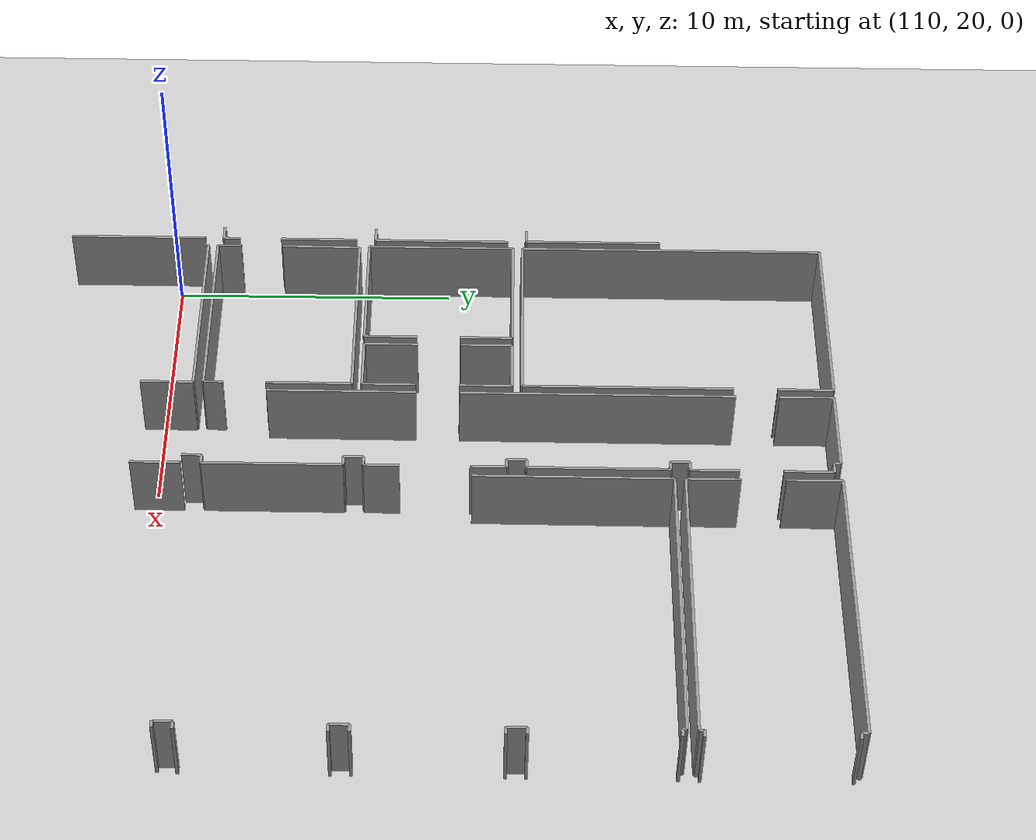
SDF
<sdf version="1.6">
 <world name="default">
  <model name="ground_plane">
   <static>1</static>
   <link name="link">
    <collision name="collision">
     <geometry><plane><normal>0 0 1</normal><size>100 100</size></plane></geometry>
     <surface><friction><ode><mu>100</mu><mu2>50</mu2></ode></friction></surface>
    </collision>
    <visual name="visual">
     <cast_shadows>0</cast_shadows>
     <geometry><plane><normal>0 0 1</normal><size>100 100</size></plane></geometry>
     <material>
      <script><uri>file://media/materials/scripts/gazebo.material</uri><name>Gazebo/Grey</name></script>
     </material>
    </visual>
   </link>
  </model>
  <model name="50015847">
   <static>1</static>
   <link name="Wall_699">
    <collision name="Wall_699_Collision">
     <geometry><box><size>4.9366959882 0.1 2.5</size></box></geometry>
     <pose>2.4683479941 0 1.25 0 0 0</pose>
    </collision>
    <visual name="Wall_699_Visual">
     <pose>2.4683479941 0 1.25 0 0 0</pose>
     <geometry><box><size>4.9366959882 0.1 2.5</size></box></geometry>
     <material>
      <script><uri>file://media/materials/scripts/gazebo.material</uri><name>Gazebo/Grey</name></script>
      <ambient>1 1 1 1</ambient>
     </material>
    </visual>
    <pose>241.794884832 -6.09548990695 0 0 0 -1.57079632679</pose>
   </link>
   <link name="Wall_700">
    <collision name="Wall_700_Collision">
     <geometry><box><size>0.569481873189 0.1 2.5</size></box></geometry>
     <pose>0.284740936594 0 1.25 0 0 0</pose>
    </collision>
    <visual name="Wall_700_Visual">
     <pose>0.284740936594 0 1.25 0 0 0</pose>
     <geometry><box><size>0.569481873189 0.1 2.5</size></box></geometry>
     <material>
      <script><uri>file://media/materials/scripts/gazebo.material</uri><name>Gazebo/Grey</name></script>
      <ambient>1 1 1 1</ambient>
     </material>
    </visual>
    <pose>241.794884832 -11.0321858952 0 0 0 3.14159265359</pose>
   </link>
   <link name="Wall_703">
    <collision name="Wall_703_Collision">
     <geometry><box><size>4.89830680836 0.1 2.5</size></box></geometry>
     <pose>2.44915340418 0 1.25 0 0 0</pose>
    </collision>
    <visual name="Wall_703_Visual">
     <pose>2.44915340418 0 1.25 0 0 0</pose>
     <geometry><box><size>4.89830680836 0.1 2.5</size></box></geometry>
     <material>
      <script><uri>file://media/materials/scripts/gazebo.material</uri><name>Gazebo/Grey</name></script>
      <ambient>1 1 1 1</ambient>
     </material>
    </visual>
    <pose>241.82285046 -11.71530991 0 0 0 -1.57079632679</pose>
   </link>
   <link name="Wall_704">
    <collision name="Wall_704_Collision">
     <geometry><box><size>0.599989830681 0.1 2.5</size></box></geometry>
     <pose>0.29999491534 0 1.25 0 0 0</pose>
    </collision>
    <visual name="Wall_704_Visual">
     <pose>0.29999491534 0 1.25 0 0 0</pose>
     <geometry><box><size>0.599989830681 0.1 2.5</size></box></geometry>
     <material>
      <script><uri>file://media/materials/scripts/gazebo.material</uri><name>Gazebo/Grey</name></script>
      <ambient>1 1 1 1</ambient>
     </material>
    </visual>
    <pose>241.82285046 -16.6136167184 0 0 0 3.14159265359</pose>
   </link>
   <link name="Wall_707">
    <collision name="Wall_707_Collision">
     <geometry><box><size>2.8016474297 0.1 2.5</size></box></geometry>
     <pose>1.40082371485 0 1.25 0 0 0</pose>
    </collision>
    <visual name="Wall_707_Visual">
     <pose>1.40082371485 0 1.25 0 0 0</pose>
     <geometry><box><size>2.8016474297 0.1 2.5</size></box></geometry>
     <material>
      <script><uri>file://media/materials/scripts/gazebo.material</uri><name>Gazebo/Grey</name></script>
      <ambient>1 1 1 1</ambient>
     </material>
    </visual>
    <pose>241.815223471 -17.3122489449 0 0 0 -1.57079632679</pose>
   </link>
   <link name="Wall_708">
    <collision name="Wall_708_Collision">
     <geometry><box><size>0.602023694514 0.1 2.5</size></box></geometry>
     <pose>0.301011847257 0 1.25 0 0 0</pose>
    </collision>
    <visual name="Wall_708_Visual">
     <pose>0.301011847257 0 1.25 0 0 0</pose>
     <geometry><box><size>0.602023694514 0.1 2.5</size></box></geometry>
     <material>
      <script><uri>file://media/materials/scripts/gazebo.material</uri><name>Gazebo/Grey</name></script>
      <ambient>1 1 1 1</ambient>
     </material>
    </visual>
    <pose>241.815223471 -21.6347180556 0 0 0 -1.57079632679</pose>
   </link>
   <link name="Wall_709">
    <collision name="Wall_709_Collision">
     <geometry><box><size>0.579651192353 0.1 2.5</size></box></geometry>
     <pose>0.289825596176 0 1.25 0 0 0</pose>
    </collision>
    <visual name="Wall_709_Visual">
     <pose>0.289825596176 0 1.25 0 0 0</pose>
     <geometry><box><size>0.579651192353 0.1 2.5</size></box></geometry>
     <material>
      <script><uri>file://media/materials/scripts/gazebo.material</uri><name>Gazebo/Grey</name></script>
      <ambient>1 1 1 1</ambient>
     </material>
    </visual>
    <pose>241.815223471 -22.2367417501 0 0 0 3.14159265359</pose>
   </link>
   <link name="Wall_712">
    <collision name="Wall_712_Collision">
     <geometry><box><size>4.95881425739 0.1 2.5</size></box></geometry>
     <pose>2.47940712869 0 1.25 0 0 0</pose>
    </collision>
    <visual name="Wall_712_Visual">
     <pose>2.47940712869 0 1.25 0 0 0</pose>
     <geometry><box><size>4.95881425739 0.1 2.5</size></box></geometry>
     <material>
      <script><uri>file://media/materials/scripts/gazebo.material</uri><name>Gazebo/Grey</name></script>
      <ambient>1 1 1 1</ambient>
     </material>
    </visual>
    <pose>241.810138811 -22.9152895714 0 0 0 -1.57079632679</pose>
   </link>
   <link name="Wall_717">
    <collision name="Wall_717_Collision">
     <geometry><box><size>10.9317638684 0.1 2.5</size></box></geometry>
     <pose>5.4658819342 0 1.25 0 0 0</pose>
    </collision>
    <visual name="Wall_717_Visual">
     <pose>5.4658819342 0 1.25 0 0 0</pose>
     <geometry><box><size>10.9317638684 0.1 2.5</size></box></geometry>
     <material>
      <script><uri>file://media/materials/scripts/gazebo.material</uri><name>Gazebo/Grey</name></script>
      <ambient>1 1 1 1</ambient>
     </material>
    </visual>
    <pose>242.163522652 -11.1791325571 0 0 0 1.57079632679</pose>
   </link>
   <link name="Wall_718">
    <collision name="Wall_718_Collision">
     <geometry><box><size>6.92784868053 0.1 2.5</size></box></geometry>
     <pose>3.46392434027 0 1.25 0 0 0</pose>
    </collision>
    <visual name="Wall_718_Visual">
     <pose>3.46392434027 0 1.25 0 0 0</pose>
     <geometry><box><size>6.92784868053 0.1 2.5</size></box></geometry>
     <material>
      <script><uri>file://media/materials/scripts/gazebo.material</uri><name>Gazebo/Grey</name></script>
      <ambient>1 1 1 1</ambient>
     </material>
    </visual>
    <pose>242.163522652 -0.247368688666 0 0 0 0.0</pose>
   </link>
   <link name="Wall_719">
    <collision name="Wall_719_Collision">
     <geometry><box><size>1.96420399654 0.1 2.5</size></box></geometry>
     <pose>0.982101998271 0 1.25 0 0 0</pose>
    </collision>
    <visual name="Wall_719_Visual">
     <pose>0.982101998271 0 1.25 0 0 0</pose>
     <geometry><box><size>1.96420399654 0.1 2.5</size></box></geometry>
     <material>
      <script><uri>file://media/materials/scripts/gazebo.material</uri><name>Gazebo/Grey</name></script>
      <ambient>1 1 1 1</ambient>
     </material>
    </visual>
    <pose>249.091371333 -0.247368688666 0 0 0 -1.57079632679</pose>
   </link>
   <link name="Wall_720">
    <collision name="Wall_720_Collision">
     <geometry><box><size>7.44368739513 0.1 2.5</size></box></geometry>
     <pose>3.72184369756 0 1.25 0 0 0</pose>
    </collision>
    <visual name="Wall_720_Visual">
     <pose>3.72184369756 0 1.25 0 0 0</pose>
     <geometry><box><size>7.44368739513 0.1 2.5</size></box></geometry>
     <material>
      <script><uri>file://media/materials/scripts/gazebo.material</uri><name>Gazebo/Grey</name></script>
      <ambient>1 1 1 1</ambient>
     </material>
    </visual>
    <pose>249.091371333 -3.74917374282 0 0 0 -1.57079632679</pose>
   </link>
   <link name="Wall_721">
    <collision name="Wall_721_Collision">
     <geometry><box><size>6.92786228315 0.1 2.5</size></box></geometry>
     <pose>3.46393114157 0 1.25 0 0 0</pose>
    </collision>
    <visual name="Wall_721_Visual">
     <pose>3.46393114157 0 1.25 0 0 0</pose>
     <geometry><box><size>6.92786228315 0.1 2.5</size></box></geometry>
     <material>
      <script><uri>file://media/materials/scripts/gazebo.material</uri><name>Gazebo/Grey</name></script>
      <ambient>1 1 1 1</ambient>
     </material>
    </visual>
    <pose>249.091371333 -11.1928611379 0 0 0 3.13961100481</pose>
   </link>
   <link name="Wall_722">
    <collision name="Wall_722_Collision">
     <geometry><box><size>5.29338485788 0.1 2.5</size></box></geometry>
     <pose>2.64669242894 0 1.25 0 0 0</pose>
    </collision>
    <visual name="Wall_722_Visual">
     <pose>2.64669242894 0 1.25 0 0 0</pose>
     <geometry><box><size>5.29338485788 0.1 2.5</size></box></geometry>
     <material>
      <script><uri>file://media/materials/scripts/gazebo.material</uri><name>Gazebo/Grey</name></script>
      <ambient>1 1 1 1</ambient>
     </material>
    </visual>
    <pose>242.166064982 -16.8353078761 0 0 0 1.57079632679</pose>
   </link>
   <link name="Wall_723">
    <collision name="Wall_723_Collision">
     <geometry><box><size>4.59653226217 0.1 2.5</size></box></geometry>
     <pose>2.29826613108 0 1.25 0 0 0</pose>
    </collision>
    <visual name="Wall_723_Visual">
     <pose>2.29826613108 0 1.25 0 0 0</pose>
     <geometry><box><size>4.59653226217 0.1 2.5</size></box></geometry>
     <material>
      <script><uri>file://media/materials/scripts/gazebo.material</uri><name>Gazebo/Grey</name></script>
      <ambient>1 1 1 1</ambient>
     </material>
    </visual>
    <pose>242.166064982 -11.5419230183 0 0 0 0.0</pose>
   </link>
   <link name="Wall_724">
    <collision name="Wall_724_Collision">
     <geometry><box><size>1.87140895917 0.1 2.5</size></box></geometry>
     <pose>0.935704479585 0 1.25 0 0 0</pose>
    </collision>
    <visual name="Wall_724_Visual">
     <pose>0.935704479585 0 1.25 0 0 0</pose>
     <geometry><box><size>1.87140895917 0.1 2.5</size></box></geometry>
     <material>
      <script><uri>file://media/materials/scripts/gazebo.material</uri><name>Gazebo/Grey</name></script>
      <ambient>1 1 1 1</ambient>
     </material>
    </visual>
    <pose>246.762597244 -11.5419230183 0 0 0 -1.57079632679</pose>
   </link>
   <link name="Wall_725">
    <collision name="Wall_725_Collision">
     <geometry><box><size>1.88844256877 0.1 2.5</size></box></geometry>
     <pose>0.944221284385 0 1.25 0 0 0</pose>
    </collision>
    <visual name="Wall_725_Visual">
     <pose>0.944221284385 0 1.25 0 0 0</pose>
     <geometry><box><size>1.88844256877 0.1 2.5</size></box></geometry>
     <material>
      <script><uri>file://media/materials/scripts/gazebo.material</uri><name>Gazebo/Grey</name></script>
      <ambient>1 1 1 1</ambient>
     </material>
    </visual>
    <pose>246.762597244 -14.9527126659 0 0 0 -1.57079632679</pose>
   </link>
   <link name="Wall_726">
    <collision name="Wall_726_Collision">
     <geometry><box><size>4.59653598145 0.1 2.5</size></box></geometry>
     <pose>2.29826799072 0 1.25 0 0 0</pose>
    </collision>
    <visual name="Wall_726_Visual">
     <pose>2.29826799072 0 1.25 0 0 0</pose>
     <geometry><box><size>4.59653598145 0.1 2.5</size></box></geometry>
     <material>
      <script><uri>file://media/materials/scripts/gazebo.material</uri><name>Gazebo/Grey</name></script>
      <ambient>1 1 1 1</ambient>
     </material>
    </visual>
    <pose>246.762597244 -16.8411552347 0 0 0 3.14032053038</pose>
   </link>
   <link name="Wall_727">
    <collision name="Wall_727_Collision">
     <geometry><box><size>1.97284791783 0.1 2.5</size></box></geometry>
     <pose>0.986423958916 0 1.25 0 0 0</pose>
    </collision>
    <visual name="Wall_727_Visual">
     <pose>0.986423958916 0 1.25 0 0 0</pose>
     <geometry><box><size>1.97284791783 0.1 2.5</size></box></geometry>
     <material>
      <script><uri>file://media/materials/scripts/gazebo.material</uri><name>Gazebo/Grey</name></script>
      <ambient>1 1 1 1</ambient>
     </material>
    </visual>
    <pose>247.121065745 -11.5459907459 0 0 0 0.0</pose>
   </link>
   <link name="Wall_728">
    <collision name="Wall_728_Collision">
     <geometry><box><size>1.86962932832 0.1 2.5</size></box></geometry>
     <pose>0.934814664158 0 1.25 0 0 0</pose>
    </collision>
    <visual name="Wall_728_Visual">
     <pose>0.934814664158 0 1.25 0 0 0</pose>
     <geometry><box><size>1.86962932832 0.1 2.5</size></box></geometry>
     <material>
      <script><uri>file://media/materials/scripts/gazebo.material</uri><name>Gazebo/Grey</name></script>
      <ambient>1 1 1 1</ambient>
     </material>
    </visual>
    <pose>249.093913662 -11.5459907459 0 0 0 -1.57079632679</pose>
   </link>
   <link name="Wall_729">
    <collision name="Wall_729_Collision">
     <geometry><box><size>1.87903594854 0.1 2.5</size></box></geometry>
     <pose>0.939517974272 0 1.25 0 0 0</pose>
    </collision>
    <visual name="Wall_729_Visual">
     <pose>0.939517974272 0 1.25 0 0 0</pose>
     <geometry><box><size>1.87903594854 0.1 2.5</size></box></geometry>
     <material>
      <script><uri>file://media/materials/scripts/gazebo.material</uri><name>Gazebo/Grey</name></script>
      <ambient>1 1 1 1</ambient>
     </material>
    </visual>
    <pose>249.093913662 -14.9562719276 0 0 0 -1.57079632679</pose>
   </link>
   <link name="Wall_730">
    <collision name="Wall_730_Collision">
     <geometry><box><size>1.96013626888 0.1 2.5</size></box></geometry>
     <pose>0.980068134438 0 1.25 0 0 0</pose>
    </collision>
    <visual name="Wall_730_Visual">
     <pose>0.980068134438 0 1.25 0 0 0</pose>
     <geometry><box><size>1.96013626888 0.1 2.5</size></box></geometry>
     <material>
      <script><uri>file://media/materials/scripts/gazebo.material</uri><name>Gazebo/Grey</name></script>
      <ambient>1 1 1 1</ambient>
     </material>
    </visual>
    <pose>249.093913662 -16.8353078761 0 0 0 3.14159265359</pose>
   </link>
   <link name="Wall_731">
    <collision name="Wall_731_Collision">
     <geometry><box><size>1.92327248691 0.1 2.5</size></box></geometry>
     <pose>0.961636243454 0 1.25 0 0 0</pose>
    </collision>
    <visual name="Wall_731_Visual">
     <pose>0.961636243454 0 1.25 0 0 0</pose>
     <geometry><box><size>1.92327248691 0.1 2.5</size></box></geometry>
     <material>
      <script><uri>file://media/materials/scripts/gazebo.material</uri><name>Gazebo/Grey</name></script>
      <ambient>1 1 1 1</ambient>
     </material>
    </visual>
    <pose>247.133777394 -16.8353078761 0 0 0 1.57079632679</pose>
   </link>
   <link name="Wall_732">
    <collision name="Wall_732_Collision">
     <geometry><box><size>1.83179272094 0.1 2.5</size></box></geometry>
     <pose>0.91589636047 0 1.25 0 0 0</pose>
    </collision>
    <visual name="Wall_732_Visual">
     <pose>0.91589636047 0 1.25 0 0 0</pose>
     <geometry><box><size>1.83179272094 0.1 2.5</size></box></geometry>
     <material>
      <script><uri>file://media/materials/scripts/gazebo.material</uri><name>Gazebo/Grey</name></script>
      <ambient>1 1 1 1</ambient>
     </material>
    </visual>
    <pose>247.133777394 -13.3777393603 0 0 0 1.57773584066</pose>
   </link>
   <link name="Wall_733">
    <collision name="Wall_733_Collision">
     <geometry><box><size>6.86174810596 0.1 2.5</size></box></geometry>
     <pose>3.43087405298 0 1.25 0 0 0</pose>
    </collision>
    <visual name="Wall_733_Visual">
     <pose>3.43087405298 0 1.25 0 0 0</pose>
     <geometry><box><size>6.86174810596 0.1 2.5</size></box></geometry>
     <material>
      <script><uri>file://media/materials/scripts/gazebo.material</uri><name>Gazebo/Grey</name></script>
      <ambient>1 1 1 1</ambient>
     </material>
    </visual>
    <pose>242.227080897 -17.1932679107 0 0 0 0.0</pose>
   </link>
   <link name="Wall_734">
    <collision name="Wall_734_Collision">
     <geometry><box><size>3.04189759496 0.1 2.5</size></box></geometry>
     <pose>1.52094879748 0 1.25 0 0 0</pose>
    </collision>
    <visual name="Wall_734_Visual">
     <pose>1.52094879748 0 1.25 0 0 0</pose>
     <geometry><box><size>3.04189759496 0.1 2.5</size></box></geometry>
     <material>
      <script><uri>file://media/materials/scripts/gazebo.material</uri><name>Gazebo/Grey</name></script>
      <ambient>1 1 1 1</ambient>
     </material>
    </visual>
    <pose>249.088829003 -17.1932679107 0 0 0 -1.57079632679</pose>
   </link>
   <link name="Wall_735">
    <collision name="Wall_735_Collision">
     <geometry><box><size>0.692530635074 0.1 2.5</size></box></geometry>
     <pose>0.346265317537 0 1.25 0 0 0</pose>
    </collision>
    <visual name="Wall_735_Visual">
     <pose>0.346265317537 0 1.25 0 0 0</pose>
     <geometry><box><size>0.692530635074 0.1 2.5</size></box></geometry>
     <material>
      <script><uri>file://media/materials/scripts/gazebo.material</uri><name>Gazebo/Grey</name></script>
      <ambient>1 1 1 1</ambient>
     </material>
    </visual>
    <pose>249.088829003 -21.7407332079 0 0 0 -1.57079632679</pose>
   </link>
   <link name="Wall_736">
    <collision name="Wall_736_Collision">
     <geometry><box><size>6.89225606346 0.1 2.5</size></box></geometry>
     <pose>3.44612803173 0 1.25 0 0 0</pose>
    </collision>
    <visual name="Wall_736_Visual">
     <pose>3.44612803173 0 1.25 0 0 0</pose>
     <geometry><box><size>6.89225606346 0.1 2.5</size></box></geometry>
     <material>
      <script><uri>file://media/materials/scripts/gazebo.material</uri><name>Gazebo/Grey</name></script>
      <ambient>1 1 1 1</ambient>
     </material>
    </visual>
    <pose>249.088829003 -22.433263843 0 0 0 3.14159265359</pose>
   </link>
   <link name="Wall_737">
    <collision name="Wall_737_Collision">
     <geometry><box><size>0.878374942798 0.1 2.5</size></box></geometry>
     <pose>0.439187471399 0 1.25 0 0 0</pose>
    </collision>
    <visual name="Wall_737_Visual">
     <pose>0.439187471399 0 1.25 0 0 0</pose>
     <geometry><box><size>0.878374942798 0.1 2.5</size></box></geometry>
     <material>
      <script><uri>file://media/materials/scripts/gazebo.material</uri><name>Gazebo/Grey</name></script>
      <ambient>1 1 1 1</ambient>
     </material>
    </visual>
    <pose>242.196572939 -22.433263843 0 0 0 1.57079632679</pose>
   </link>
   <link name="Wall_738">
    <collision name="Wall_738_Collision">
     <geometry><box><size>2.84706435997 0.1 2.5</size></box></geometry>
     <pose>1.42353217998 0 1.25 0 0 0</pose>
    </collision>
    <visual name="Wall_738_Visual">
     <pose>1.42353217998 0 1.25 0 0 0</pose>
     <geometry><box><size>2.84706435997 0.1 2.5</size></box></geometry>
     <material>
      <script><uri>file://media/materials/scripts/gazebo.material</uri><name>Gazebo/Grey</name></script>
      <ambient>1 1 1 1</ambient>
     </material>
    </visual>
    <pose>242.196572939 -20.0401688107 0 0 0 1.56008053765</pose>
   </link>
   <link name="Wall_740">
    <collision name="Wall_740_Collision">
     <geometry><box><size>6.93801799969 0.1 2.5</size></box></geometry>
     <pose>3.46900899985 0 1.25 0 0 0</pose>
    </collision>
    <visual name="Wall_740_Visual">
     <pose>3.46900899985 0 1.25 0 0 0</pose>
     <geometry><box><size>6.93801799969 0.1 2.5</size></box></geometry>
     <material>
      <script><uri>file://media/materials/scripts/gazebo.material</uri><name>Gazebo/Grey</name></script>
      <ambient>1 1 1 1</ambient>
     </material>
    </visual>
    <pose>242.178776631 -22.7909696446 0 0 0 0.0</pose>
   </link>
   <link name="Wall_741">
    <collision name="Wall_741_Collision">
     <geometry><box><size>1.87369705598 0.1 2.5</size></box></geometry>
     <pose>0.936848527991 0 1.25 0 0 0</pose>
    </collision>
    <visual name="Wall_741_Visual">
     <pose>0.936848527991 0 1.25 0 0 0</pose>
     <geometry><box><size>1.87369705598 0.1 2.5</size></box></geometry>
     <material>
      <script><uri>file://media/materials/scripts/gazebo.material</uri><name>Gazebo/Grey</name></script>
      <ambient>1 1 1 1</ambient>
     </material>
    </visual>
    <pose>249.116794631 -22.7909696446 0 0 0 -1.57079632679</pose>
   </link>
   <link name="Wall_771">
    <collision name="Wall_771_Collision">
     <geometry><box><size>10.4693140794 0.1 2.5</size></box></geometry>
     <pose>5.23465703971 0 1.25 0 0 0</pose>
    </collision>
    <visual name="Wall_771_Visual">
     <pose>5.23465703971 0 1.25 0 0 0</pose>
     <geometry><box><size>10.4693140794 0.1 2.5</size></box></geometry>
     <material>
      <script><uri>file://media/materials/scripts/gazebo.material</uri><name>Gazebo/Grey</name></script>
      <ambient>1 1 1 1</ambient>
     </material>
    </visual>
    <pose>253.314181116 -5.9793054355 0 0 0 0.0</pose>
   </link>
   <link name="Wall_772">
    <collision name="Wall_772_Collision">
     <geometry><box><size>0.143387400214 0.1 2.5</size></box></geometry>
     <pose>0.0716937001068 0 1.25 0 0 0</pose>
    </collision>
    <visual name="Wall_772_Visual">
     <pose>0.0716937001068 0 1.25 0 0 0</pose>
     <geometry><box><size>0.143387400214 0.1 2.5</size></box></geometry>
     <material>
      <script><uri>file://media/materials/scripts/gazebo.material</uri><name>Gazebo/Grey</name></script>
      <ambient>1 1 1 1</ambient>
     </material>
    </visual>
    <pose>263.783495195 -5.9793054355 0 0 0 -1.57079632679</pose>
   </link>
   <link name="Wall_773">
    <collision name="Wall_773_Collision">
     <geometry><box><size>0.277113947221 0.1 2.5</size></box></geometry>
     <pose>0.138556973611 0 1.25 0 0 0</pose>
    </collision>
    <visual name="Wall_773_Visual">
     <pose>0.138556973611 0 1.25 0 0 0</pose>
     <geometry><box><size>0.277113947221 0.1 2.5</size></box></geometry>
     <material>
      <script><uri>file://media/materials/scripts/gazebo.material</uri><name>Gazebo/Grey</name></script>
      <ambient>1 1 1 1</ambient>
     </material>
    </visual>
    <pose>263.783495195 -6.12269283571 0 0 0 0.0</pose>
   </link>
   <link name="Wall_774">
    <collision name="Wall_774_Collision">
     <geometry><box><size>0.251690649311 0.1 2.5</size></box></geometry>
     <pose>0.125845324656 0 1.25 0 0 0</pose>
    </collision>
    <visual name="Wall_774_Visual">
     <pose>0.125845324656 0 1.25 0 0 0</pose>
     <geometry><box><size>0.251690649311 0.1 2.5</size></box></geometry>
     <material>
      <script><uri>file://media/materials/scripts/gazebo.material</uri><name>Gazebo/Grey</name></script>
      <ambient>1 1 1 1</ambient>
     </material>
    </visual>
    <pose>264.060609142 -11.0161692175 0 0 0 3.14159265359</pose>
   </link>
   <link name="Wall_775">
    <collision name="Wall_775_Collision">
     <geometry><box><size>0.678547821223 0.1 2.5</size></box></geometry>
     <pose>0.339273910612 0 1.25 0 0 0</pose>
    </collision>
    <visual name="Wall_775_Visual">
     <pose>0.339273910612 0 1.25 0 0 0</pose>
     <geometry><box><size>0.678547821223 0.1 2.5</size></box></geometry>
     <material>
      <script><uri>file://media/materials/scripts/gazebo.material</uri><name>Gazebo/Grey</name></script>
      <ambient>1 1 1 1</ambient>
     </material>
    </visual>
    <pose>263.808918493 -11.0161692175 0 0 0 -1.57079632679</pose>
   </link>
   <link name="Wall_776">
    <collision name="Wall_776_Collision">
     <geometry><box><size>0.256775308893 0.1 2.5</size></box></geometry>
     <pose>0.128387654447 0 1.25 0 0 0</pose>
    </collision>
    <visual name="Wall_776_Visual">
     <pose>0.128387654447 0 1.25 0 0 0</pose>
     <geometry><box><size>0.256775308893 0.1 2.5</size></box></geometry>
     <material>
      <script><uri>file://media/materials/scripts/gazebo.material</uri><name>Gazebo/Grey</name></script>
      <ambient>1 1 1 1</ambient>
     </material>
    </visual>
    <pose>263.808918493 -11.6947170387 0 0 0 0.0</pose>
   </link>
   <link name="Wall_777">
    <collision name="Wall_777_Collision">
     <geometry><box><size>0.256775308893 0.1 2.5</size></box></geometry>
     <pose>0.128387654447 0 1.25 0 0 0</pose>
    </collision>
    <visual name="Wall_777_Visual">
     <pose>0.128387654447 0 1.25 0 0 0</pose>
     <geometry><box><size>0.256775308893 0.1 2.5</size></box></geometry>
     <material>
      <script><uri>file://media/materials/scripts/gazebo.material</uri><name>Gazebo/Grey</name></script>
      <ambient>1 1 1 1</ambient>
     </material>
    </visual>
    <pose>264.065693802 -16.6405654141 0 0 0 3.14159265359</pose>
   </link>
   <link name="Wall_778">
    <collision name="Wall_778_Collision">
     <geometry><box><size>0.678547821223 0.1 2.5</size></box></geometry>
     <pose>0.339273910612 0 1.25 0 0 0</pose>
    </collision>
    <visual name="Wall_778_Visual">
     <pose>0.339273910612 0 1.25 0 0 0</pose>
     <geometry><box><size>0.678547821223 0.1 2.5</size></box></geometry>
     <material>
      <script><uri>file://media/materials/scripts/gazebo.material</uri><name>Gazebo/Grey</name></script>
      <ambient>1 1 1 1</ambient>
     </material>
    </visual>
    <pose>263.808918493 -16.6405654141 0 0 0 -1.57079632679</pose>
   </link>
   <link name="Wall_779">
    <collision name="Wall_779_Collision">
     <geometry><box><size>0.269486957848 0.1 2.5</size></box></geometry>
     <pose>0.134743478924 0 1.25 0 0 0</pose>
    </collision>
    <visual name="Wall_779_Visual">
     <pose>0.134743478924 0 1.25 0 0 0</pose>
     <geometry><box><size>0.269486957848 0.1 2.5</size></box></geometry>
     <material>
      <script><uri>file://media/materials/scripts/gazebo.material</uri><name>Gazebo/Grey</name></script>
      <ambient>1 1 1 1</ambient>
     </material>
    </visual>
    <pose>263.808918493 -17.3191132354 0 0 0 0.0</pose>
   </link>
   <link name="Wall_780">
    <collision name="Wall_780_Collision">
     <geometry><box><size>0.287283266385 0.1 2.5</size></box></geometry>
     <pose>0.143641633193 0 1.25 0 0 0</pose>
    </collision>
    <visual name="Wall_780_Visual">
     <pose>0.143641633193 0 1.25 0 0 0</pose>
     <geometry><box><size>0.287283266385 0.1 2.5</size></box></geometry>
     <material>
      <script><uri>file://media/materials/scripts/gazebo.material</uri><name>Gazebo/Grey</name></script>
      <ambient>1 1 1 1</ambient>
     </material>
    </visual>
    <pose>264.078405451 -22.2397925459 0 0 0 3.14159265359</pose>
   </link>
   <link name="Wall_781">
    <collision name="Wall_781_Collision">
     <geometry><box><size>0.65973458077 0.1 2.5</size></box></geometry>
     <pose>0.329867290385 0 1.25 0 0 0</pose>
    </collision>
    <visual name="Wall_781_Visual">
     <pose>0.329867290385 0 1.25 0 0 0</pose>
     <geometry><box><size>0.65973458077 0.1 2.5</size></box></geometry>
     <material>
      <script><uri>file://media/materials/scripts/gazebo.material</uri><name>Gazebo/Grey</name></script>
      <ambient>1 1 1 1</ambient>
     </material>
    </visual>
    <pose>263.791122184 -22.2397925459 0 0 0 -1.57079632679</pose>
   </link>
   <link name="Wall_782">
    <collision name="Wall_782_Collision">
     <geometry><box><size>0.244063659938 0.1 2.5</size></box></geometry>
     <pose>0.122031829969 0 1.25 0 0 0</pose>
    </collision>
    <visual name="Wall_782_Visual">
     <pose>0.122031829969 0 1.25 0 0 0</pose>
     <geometry><box><size>0.244063659938 0.1 2.5</size></box></geometry>
     <material>
      <script><uri>file://media/materials/scripts/gazebo.material</uri><name>Gazebo/Grey</name></script>
      <ambient>1 1 1 1</ambient>
     </material>
    </visual>
    <pose>263.791122184 -22.8995271267 0 0 0 0.0</pose>
   </link>
   <link name="Wall_788">
    <collision name="Wall_788_Collision">
     <geometry><box><size>6.93370769127 0.1 2.5</size></box></geometry>
     <pose>3.46685384563 0 1.25 0 0 0</pose>
    </collision>
    <visual name="Wall_788_Visual">
     <pose>3.46685384563 0 1.25 0 0 0</pose>
     <geometry><box><size>6.93370769127 0.1 2.5</size></box></geometry>
     <material>
      <script><uri>file://media/materials/scripts/gazebo.material</uri><name>Gazebo/Grey</name></script>
      <ambient>1 1 1 1</ambient>
     </material>
    </visual>
    <pose>253.301469467 -12.9130014746 0 0 0 1.56896301385</pose>
   </link>
   <link name="Wall_789">
    <collision name="Wall_789_Collision">
     <geometry><box><size>10.5201606752 0.1 2.5</size></box></geometry>
     <pose>5.26008033762 0 1.25 0 0 0</pose>
    </collision>
    <visual name="Wall_789_Visual">
     <pose>5.26008033762 0 1.25 0 0 0</pose>
     <geometry><box><size>10.5201606752 0.1 2.5</size></box></geometry>
     <material>
      <script><uri>file://media/materials/scripts/gazebo.material</uri><name>Gazebo/Grey</name></script>
      <ambient>1 1 1 1</ambient>
     </material>
    </visual>
    <pose>253.304011796 -0.242029796105 0 0 0 0.0</pose>
   </link>
   <link name="Wall_790">
    <collision name="Wall_790_Collision">
     <geometry><box><size>0.246097523771 0.1 2.5</size></box></geometry>
     <pose>0.123048761885 0 1.25 0 0 0</pose>
    </collision>
    <visual name="Wall_790_Visual">
     <pose>0.123048761885 0 1.25 0 0 0</pose>
     <geometry><box><size>0.246097523771 0.1 2.5</size></box></geometry>
     <material>
      <script><uri>file://media/materials/scripts/gazebo.material</uri><name>Gazebo/Grey</name></script>
      <ambient>1 1 1 1</ambient>
     </material>
    </visual>
    <pose>263.824172472 -0.242029796105 0 0 0 -1.57079632679</pose>
   </link>
   <link name="Wall_791">
    <collision name="Wall_791_Collision">
     <geometry><box><size>0.241521330147 0.1 2.5</size></box></geometry>
     <pose>0.120760665073 0 1.25 0 0 0</pose>
    </collision>
    <visual name="Wall_791_Visual">
     <pose>0.120760665073 0 1.25 0 0 0</pose>
     <geometry><box><size>0.241521330147 0.1 2.5</size></box></geometry>
     <material>
      <script><uri>file://media/materials/scripts/gazebo.material</uri><name>Gazebo/Grey</name></script>
      <ambient>1 1 1 1</ambient>
     </material>
    </visual>
    <pose>263.824172472 -0.488127319876 0 0 0 0.0</pose>
   </link>
   <link name="Wall_792">
    <collision name="Wall_792_Collision">
     <geometry><box><size>0.254232979102 0.1 2.5</size></box></geometry>
     <pose>0.127116489551 0 1.25 0 0 0</pose>
    </collision>
    <visual name="Wall_792_Visual">
     <pose>0.127116489551 0 1.25 0 0 0</pose>
     <geometry><box><size>0.254232979102 0.1 2.5</size></box></geometry>
     <material>
      <script><uri>file://media/materials/scripts/gazebo.material</uri><name>Gazebo/Grey</name></script>
      <ambient>1 1 1 1</ambient>
     </material>
    </visual>
    <pose>264.065693802 -5.43092489958 0 0 0 3.14159265359</pose>
   </link>
   <link name="Wall_793">
    <collision name="Wall_793_Collision">
     <geometry><box><size>0.168556465145 0.1 2.5</size></box></geometry>
     <pose>0.0842782325723 0 1.25 0 0 0</pose>
    </collision>
    <visual name="Wall_793_Visual">
     <pose>0.0842782325723 0 1.25 0 0 0</pose>
     <geometry><box><size>0.168556465145 0.1 2.5</size></box></geometry>
     <material>
      <script><uri>file://media/materials/scripts/gazebo.material</uri><name>Gazebo/Grey</name></script>
      <ambient>1 1 1 1</ambient>
     </material>
    </visual>
    <pose>263.811460823 -5.43092489958 0 0 0 -1.57079632679</pose>
   </link>
   <link name="Wall_794">
    <collision name="Wall_794_Collision">
     <geometry><box><size>10.5049066965 0.1 2.5</size></box></geometry>
     <pose>5.25245334825 0 1.25 0 0 0</pose>
    </collision>
    <visual name="Wall_794_Visual">
     <pose>5.25245334825 0 1.25 0 0 0</pose>
     <geometry><box><size>10.5049066965 0.1 2.5</size></box></geometry>
     <material>
      <script><uri>file://media/materials/scripts/gazebo.material</uri><name>Gazebo/Grey</name></script>
      <ambient>1 1 1 1</ambient>
     </material>
    </visual>
    <pose>263.811460823 -5.59948136472 0 0 0 3.14159265359</pose>
   </link>
   <link name="Wall_795">
    <collision name="Wall_795_Collision">
     <geometry><box><size>1.89479839325 0.1 2.5</size></box></geometry>
     <pose>0.947399196624 0 1.25 0 0 0</pose>
    </collision>
    <visual name="Wall_795_Visual">
     <pose>0.947399196624 0 1.25 0 0 0</pose>
     <geometry><box><size>1.89479839325 0.1 2.5</size></box></geometry>
     <material>
      <script><uri>file://media/materials/scripts/gazebo.material</uri><name>Gazebo/Grey</name></script>
      <ambient>1 1 1 1</ambient>
     </material>
    </visual>
    <pose>253.306554126 -5.59948136472 0 0 0 1.57079632679</pose>
   </link>
   <link name="Wall_796">
    <collision name="Wall_796_Collision">
     <geometry><box><size>1.93344347756 0.1 2.5</size></box></geometry>
     <pose>0.966721738778 0 1.25 0 0 0</pose>
    </collision>
    <visual name="Wall_796_Visual">
     <pose>0.966721738778 0 1.25 0 0 0</pose>
     <geometry><box><size>1.93344347756 0.1 2.5</size></box></geometry>
     <material>
      <script><uri>file://media/materials/scripts/gazebo.material</uri><name>Gazebo/Grey</name></script>
      <ambient>1 1 1 1</ambient>
     </material>
    </visual>
    <pose>253.306554126 -2.17547160218 0 0 0 1.57211125043</pose>
   </link>
   <link name="Wall_797">
    <collision name="Wall_797_Collision">
     <geometry><box><size>3.07621904713 0.1 2.5</size></box></geometry>
     <pose>1.53810952357 0 1.25 0 0 0</pose>
    </collision>
    <visual name="Wall_797_Visual">
     <pose>1.53810952357 0 1.25 0 0 0</pose>
     <geometry><box><size>3.07621904713 0.1 2.5</size></box></geometry>
     <material>
      <script><uri>file://media/materials/scripts/gazebo.material</uri><name>Gazebo/Grey</name></script>
      <ambient>1 1 1 1</ambient>
     </material>
    </visual>
    <pose>249.452382163 -0.26058880358 0 0 0 0.0</pose>
   </link>
   <link name="Wall_798">
    <collision name="Wall_798_Collision">
     <geometry><box><size>0.22931814715 0.1 2.5</size></box></geometry>
     <pose>0.114659073575 0 1.25 0 0 0</pose>
    </collision>
    <visual name="Wall_798_Visual">
     <pose>0.114659073575 0 1.25 0 0 0</pose>
     <geometry><box><size>0.22931814715 0.1 2.5</size></box></geometry>
     <material>
      <script><uri>file://media/materials/scripts/gazebo.material</uri><name>Gazebo/Grey</name></script>
      <ambient>1 1 1 1</ambient>
     </material>
    </visual>
    <pose>252.52860121 -0.26058880358 0 0 0 -1.57079632679</pose>
   </link>
   <link name="Wall_799">
    <collision name="Wall_799_Collision">
     <geometry><box><size>0.383891798444 0.1 2.5</size></box></geometry>
     <pose>0.191945899222 0 1.25 0 0 0</pose>
    </collision>
    <visual name="Wall_799_Visual">
     <pose>0.191945899222 0 1.25 0 0 0</pose>
     <geometry><box><size>0.383891798444 0.1 2.5</size></box></geometry>
     <material>
      <script><uri>file://media/materials/scripts/gazebo.material</uri><name>Gazebo/Grey</name></script>
      <ambient>1 1 1 1</ambient>
     </material>
    </visual>
    <pose>252.52860121 -0.48990695073 0 0 0 0.0</pose>
   </link>
   <link name="Wall_800">
    <collision name="Wall_800_Collision">
     <geometry><box><size>1.74810596431 0.1 2.5</size></box></geometry>
     <pose>0.874052982153 0 1.25 0 0 0</pose>
    </collision>
    <visual name="Wall_800_Visual">
     <pose>0.874052982153 0 1.25 0 0 0</pose>
     <geometry><box><size>1.74810596431 0.1 2.5</size></box></geometry>
     <material>
      <script><uri>file://media/materials/scripts/gazebo.material</uri><name>Gazebo/Grey</name></script>
      <ambient>1 1 1 1</ambient>
     </material>
    </visual>
    <pose>252.912493009 -0.48990695073 0 0 0 -1.57079632679</pose>
   </link>
   <link name="Wall_801">
    <collision name="Wall_801_Collision">
     <geometry><box><size>1.69115777699 0.1 2.5</size></box></geometry>
     <pose>0.845578888493 0 1.25 0 0 0</pose>
    </collision>
    <visual name="Wall_801_Visual">
     <pose>0.845578888493 0 1.25 0 0 0</pose>
     <geometry><box><size>1.69115777699 0.1 2.5</size></box></geometry>
     <material>
      <script><uri>file://media/materials/scripts/gazebo.material</uri><name>Gazebo/Grey</name></script>
      <ambient>1 1 1 1</ambient>
     </material>
    </visual>
    <pose>252.912493009 -3.73646209386 0 0 0 -1.57079632679</pose>
   </link>
   <link name="Wall_802">
    <collision name="Wall_802_Collision">
     <geometry><box><size>0.361010830325 0.1 2.5</size></box></geometry>
     <pose>0.180505415162 0 1.25 0 0 0</pose>
    </collision>
    <visual name="Wall_802_Visual">
     <pose>0.180505415162 0 1.25 0 0 0</pose>
     <geometry><box><size>0.361010830325 0.1 2.5</size></box></geometry>
     <material>
      <script><uri>file://media/materials/scripts/gazebo.material</uri><name>Gazebo/Grey</name></script>
      <ambient>1 1 1 1</ambient>
     </material>
    </visual>
    <pose>252.912493009 -5.42761987085 0 0 0 3.14159265359</pose>
   </link>
   <link name="Wall_803">
    <collision name="Wall_803_Collision">
     <geometry><box><size>0.664819240352 0.1 2.5</size></box></geometry>
     <pose>0.332409620176 0 1.25 0 0 0</pose>
    </collision>
    <visual name="Wall_803_Visual">
     <pose>0.332409620176 0 1.25 0 0 0</pose>
     <geometry><box><size>0.664819240352 0.1 2.5</size></box></geometry>
     <material>
      <script><uri>file://media/materials/scripts/gazebo.material</uri><name>Gazebo/Grey</name></script>
      <ambient>1 1 1 1</ambient>
     </material>
    </visual>
    <pose>252.551482178 -5.42761987085 0 0 0 -1.57079632679</pose>
   </link>
   <link name="Wall_804">
    <collision name="Wall_804_Collision">
     <geometry><box><size>0.345756851579 0.1 2.5</size></box></geometry>
     <pose>0.172878425789 0 1.25 0 0 0</pose>
    </collision>
    <visual name="Wall_804_Visual">
     <pose>0.172878425789 0 1.25 0 0 0</pose>
     <geometry><box><size>0.345756851579 0.1 2.5</size></box></geometry>
     <material>
      <script><uri>file://media/materials/scripts/gazebo.material</uri><name>Gazebo/Grey</name></script>
      <ambient>1 1 1 1</ambient>
     </material>
    </visual>
    <pose>252.551482178 -6.0924391112 0 0 0 0.0</pose>
   </link>
   <link name="Wall_805">
    <collision name="Wall_805_Collision">
     <geometry><box><size>4.94533990949 0.1 2.5</size></box></geometry>
     <pose>2.47266995475 0 1.25 0 0 0</pose>
    </collision>
    <visual name="Wall_805_Visual">
     <pose>2.47266995475 0 1.25 0 0 0</pose>
     <geometry><box><size>4.94533990949 0.1 2.5</size></box></geometry>
     <material>
      <script><uri>file://media/materials/scripts/gazebo.material</uri><name>Gazebo/Grey</name></script>
      <ambient>1 1 1 1</ambient>
     </material>
    </visual>
    <pose>252.89723903 -6.0924391112 0 0 0 -1.57079632679</pose>
   </link>
   <link name="Wall_806">
    <collision name="Wall_806_Collision">
     <geometry><box><size>0.34829918137 0.1 2.5</size></box></geometry>
     <pose>0.174149590685 0 1.25 0 0 0</pose>
    </collision>
    <visual name="Wall_806_Visual">
     <pose>0.174149590685 0 1.25 0 0 0</pose>
     <geometry><box><size>0.34829918137 0.1 2.5</size></box></geometry>
     <material>
      <script><uri>file://media/materials/scripts/gazebo.material</uri><name>Gazebo/Grey</name></script>
      <ambient>1 1 1 1</ambient>
     </material>
    </visual>
    <pose>252.89723903 -11.0377790207 0 0 0 3.14159265359</pose>
   </link>
   <link name="Wall_807">
    <collision name="Wall_807_Collision">
     <geometry><box><size>0.677530889307 0.1 2.5</size></box></geometry>
     <pose>0.338765444653 0 1.25 0 0 0</pose>
    </collision>
    <visual name="Wall_807_Visual">
     <pose>0.338765444653 0 1.25 0 0 0</pose>
     <geometry><box><size>0.677530889307 0.1 2.5</size></box></geometry>
     <material>
      <script><uri>file://media/materials/scripts/gazebo.material</uri><name>Gazebo/Grey</name></script>
      <ambient>1 1 1 1</ambient>
     </material>
    </visual>
    <pose>252.548939848 -11.0377790207 0 0 0 -1.57079632679</pose>
   </link>
   <link name="Wall_808">
    <collision name="Wall_808_Collision">
     <geometry><box><size>0.338129862206 0.1 2.5</size></box></geometry>
     <pose>0.169064931103 0 1.25 0 0 0</pose>
    </collision>
    <visual name="Wall_808_Visual">
     <pose>0.169064931103 0 1.25 0 0 0</pose>
     <geometry><box><size>0.338129862206 0.1 2.5</size></box></geometry>
     <material>
      <script><uri>file://media/materials/scripts/gazebo.material</uri><name>Gazebo/Grey</name></script>
      <ambient>1 1 1 1</ambient>
     </material>
    </visual>
    <pose>252.548939848 -11.71530991 0 0 0 0.0</pose>
   </link>
   <link name="Wall_809">
    <collision name="Wall_809_Collision">
     <geometry><box><size>1.27269029338 0.1 2.5</size></box></geometry>
     <pose>0.636345146692 0 1.25 0 0 0</pose>
    </collision>
    <visual name="Wall_809_Visual">
     <pose>0.636345146692 0 1.25 0 0 0</pose>
     <geometry><box><size>1.27269029338 0.1 2.5</size></box></geometry>
     <material>
      <script><uri>file://media/materials/scripts/gazebo.material</uri><name>Gazebo/Grey</name></script>
      <ambient>1 1 1 1</ambient>
     </material>
    </visual>
    <pose>252.887069711 -11.71530991 0 0 0 -1.57079632679</pose>
   </link>
   <link name="Wall_810">
    <collision name="Wall_810_Collision">
     <geometry><box><size>1.24396196675 0.1 2.5</size></box></geometry>
     <pose>0.621980983373 0 1.25 0 0 0</pose>
    </collision>
    <visual name="Wall_810_Visual">
     <pose>0.621980983373 0 1.25 0 0 0</pose>
     <geometry><box><size>1.24396196675 0.1 2.5</size></box></geometry>
     <material>
      <script><uri>file://media/materials/scripts/gazebo.material</uri><name>Gazebo/Grey</name></script>
      <ambient>1 1 1 1</ambient>
     </material>
    </visual>
    <pose>252.887069711 -15.4029592719 0 0 0 -1.57079632679</pose>
   </link>
   <link name="Wall_811">
    <collision name="Wall_811_Collision">
     <geometry><box><size>0.366095489907 0.1 2.5</size></box></geometry>
     <pose>0.183047744953 0 1.25 0 0 0</pose>
    </collision>
    <visual name="Wall_811_Visual">
     <pose>0.183047744953 0 1.25 0 0 0</pose>
     <geometry><box><size>0.366095489907 0.1 2.5</size></box></geometry>
     <material>
      <script><uri>file://media/materials/scripts/gazebo.material</uri><name>Gazebo/Grey</name></script>
      <ambient>1 1 1 1</ambient>
     </material>
    </visual>
    <pose>252.887069711 -16.6469212386 0 0 0 3.14159265359</pose>
   </link>
   <link name="Wall_812">
    <collision name="Wall_812_Collision">
     <geometry><box><size>0.688971373367 0.1 2.5</size></box></geometry>
     <pose>0.344485686683 0 1.25 0 0 0</pose>
    </collision>
    <visual name="Wall_812_Visual">
     <pose>0.344485686683 0 1.25 0 0 0</pose>
     <geometry><box><size>0.688971373367 0.1 2.5</size></box></geometry>
     <material>
      <script><uri>file://media/materials/scripts/gazebo.material</uri><name>Gazebo/Grey</name></script>
      <ambient>1 1 1 1</ambient>
     </material>
    </visual>
    <pose>252.520974221 -16.6469212386 0 0 0 -1.57079632679</pose>
   </link>
   <link name="Wall_813">
    <collision name="Wall_813_Collision">
     <geometry><box><size>0.371180149489 0.1 2.5</size></box></geometry>
     <pose>0.185590074745 0 1.25 0 0 0</pose>
    </collision>
    <visual name="Wall_813_Visual">
     <pose>0.185590074745 0 1.25 0 0 0</pose>
     <geometry><box><size>0.371180149489 0.1 2.5</size></box></geometry>
     <material>
      <script><uri>file://media/materials/scripts/gazebo.material</uri><name>Gazebo/Grey</name></script>
      <ambient>1 1 1 1</ambient>
     </material>
    </visual>
    <pose>252.520974221 -17.335892612 0 0 0 0.0</pose>
   </link>
   <link name="Wall_814">
    <collision name="Wall_814_Collision">
     <geometry><box><size>4.88915442111 0.1 2.5</size></box></geometry>
     <pose>2.44457721056 0 1.25 0 0 0</pose>
    </collision>
    <visual name="Wall_814_Visual">
     <pose>2.44457721056 0 1.25 0 0 0</pose>
     <geometry><box><size>4.88915442111 0.1 2.5</size></box></geometry>
     <material>
      <script><uri>file://media/materials/scripts/gazebo.material</uri><name>Gazebo/Grey</name></script>
      <ambient>1 1 1 1</ambient>
     </material>
    </visual>
    <pose>252.89215437 -17.335892612 0 0 0 -1.57079632679</pose>
   </link>
   <link name="Wall_815">
    <collision name="Wall_815_Collision">
     <geometry><box><size>0.353383840952 0.1 2.5</size></box></geometry>
     <pose>0.176691920476 0 1.25 0 0 0</pose>
    </collision>
    <visual name="Wall_815_Visual">
     <pose>0.176691920476 0 1.25 0 0 0</pose>
     <geometry><box><size>0.353383840952 0.1 2.5</size></box></geometry>
     <material>
      <script><uri>file://media/materials/scripts/gazebo.material</uri><name>Gazebo/Grey</name></script>
      <ambient>1 1 1 1</ambient>
     </material>
    </visual>
    <pose>252.89215437 -22.2250470331 0 0 0 3.14159265359</pose>
   </link>
   <link name="Wall_816">
    <collision name="Wall_816_Collision">
     <geometry><box><size>0.694310265928 0.1 2.5</size></box></geometry>
     <pose>0.347155132964 0 1.25 0 0 0</pose>
    </collision>
    <visual name="Wall_816_Visual">
     <pose>0.347155132964 0 1.25 0 0 0</pose>
     <geometry><box><size>0.694310265928 0.1 2.5</size></box></geometry>
     <material>
      <script><uri>file://media/materials/scripts/gazebo.material</uri><name>Gazebo/Grey</name></script>
      <ambient>1 1 1 1</ambient>
     </material>
    </visual>
    <pose>252.538770529 -22.2250470331 0 0 0 -1.57079632679</pose>
   </link>
   <link name="Wall_818">
    <collision name="Wall_818_Collision">
     <geometry><box><size>1.76412264199 0.1 2.5</size></box></geometry>
     <pose>0.882061320995 0 1.25 0 0 0</pose>
    </collision>
    <visual name="Wall_818_Visual">
     <pose>0.882061320995 0 1.25 0 0 0</pose>
     <geometry><box><size>1.76412264199 0.1 2.5</size></box></geometry>
     <material>
      <script><uri>file://media/materials/scripts/gazebo.material</uri><name>Gazebo/Grey</name></script>
      <ambient>1 1 1 1</ambient>
     </material>
    </visual>
    <pose>252.8946967 -22.919357299 0 0 0 -1.57079632679</pose>
   </link>
   <link name="Wall_841">
    <collision name="Wall_841_Collision">
     <geometry><box><size>5.26669039508 0.1 2.5</size></box></geometry>
     <pose>2.63334519754 0 1.25 0 0 0</pose>
    </collision>
    <visual name="Wall_841_Visual">
     <pose>2.63334519754 0 1.25 0 0 0</pose>
     <geometry><box><size>5.26669039508 0.1 2.5</size></box></geometry>
     <material>
      <script><uri>file://media/materials/scripts/gazebo.material</uri><name>Gazebo/Grey</name></script>
      <ambient>1 1 1 1</ambient>
     </material>
    </visual>
    <pose>249.452382163 -20.1817765801 0 0 0 1.57079632679</pose>
   </link>
   <link name="Wall_842">
    <collision name="Wall_842_Collision">
     <geometry><box><size>9.69415772614 0.1 2.5</size></box></geometry>
     <pose>4.84707886307 0 1.25 0 0 0</pose>
    </collision>
    <visual name="Wall_842_Visual">
     <pose>4.84707886307 0 1.25 0 0 0</pose>
     <geometry><box><size>9.69415772614 0.1 2.5</size></box></geometry>
     <material>
      <script><uri>file://media/materials/scripts/gazebo.material</uri><name>Gazebo/Grey</name></script>
      <ambient>1 1 1 1</ambient>
     </material>
    </visual>
    <pose>249.452382163 -13.3874002136 0 0 0 1.57079632679</pose>
   </link>
   <link name="Wall_843">
    <collision name="Wall_843_Collision">
     <geometry><box><size>1.90471347943 0.1 2.5</size></box></geometry>
     <pose>0.952356739716 0 1.25 0 0 0</pose>
    </collision>
    <visual name="Wall_843_Visual">
     <pose>0.952356739716 0 1.25 0 0 0</pose>
     <geometry><box><size>1.90471347943 0.1 2.5</size></box></geometry>
     <material>
      <script><uri>file://media/materials/scripts/gazebo.material</uri><name>Gazebo/Grey</name></script>
      <ambient>1 1 1 1</ambient>
     </material>
    </visual>
    <pose>249.452382163 -2.16530228301 0 0 0 1.57079632679</pose>
   </link>
   <pose>-132.35 43.9162226064 0 0 0 0</pose>
  </model>
 </world>
</sdf>
